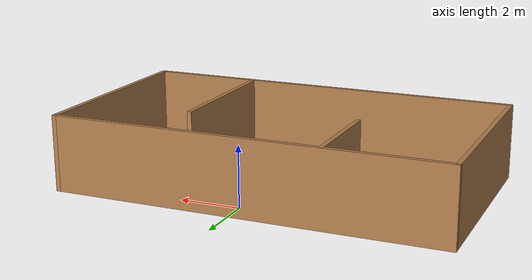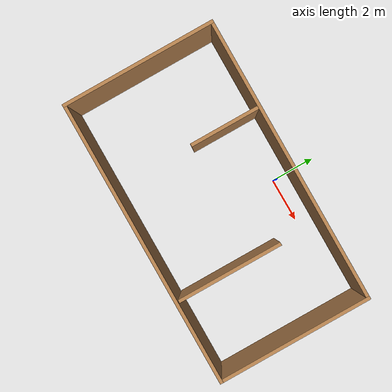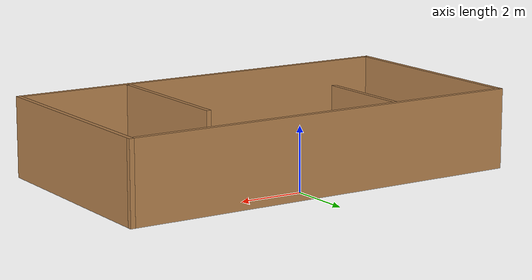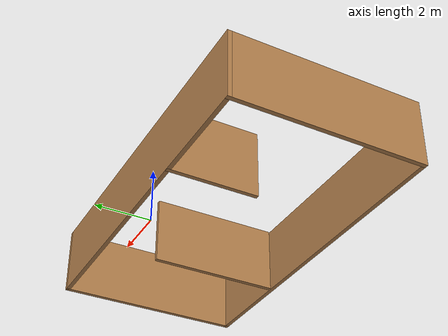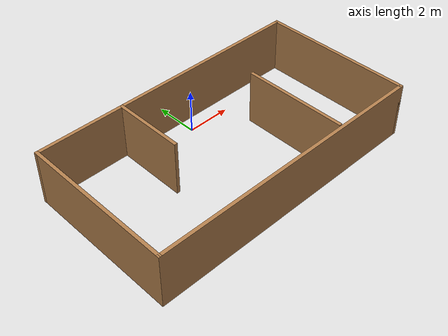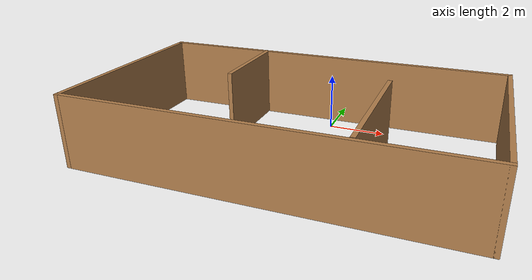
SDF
<?xml version='1.0'?>
<sdf version='1.7'>
  <model name='model'>
    <pose>-0.429899 -2.6824 0 0 -0 0</pose>
    <link name='Wall_2'>
      <collision name='Wall_2_Collision'>
        <geometry>
          <box>
            <size>7 0.15 2.5</size>
          </box>
        </geometry>
        <pose>0 0 1.25 0 -0 0</pose>
      </collision>
      <visual name='Wall_2_Visual'>
        <pose>0 0 1.25 0 -0 0</pose>
        <geometry>
          <box>
            <size>7 0.15 2.5</size>
          </box>
        </geometry>
        <material>
          <script>
            <uri>file://media/materials/scripts/gazebo.material</uri>
            <name>Gazebo/Wood</name>
          </script>
          <ambient>1 1 1 1</ambient>
        </material>
        <meta>
          <layer>0</layer>
        </meta>
      </visual>
      <pose>-6.425 -0 0 0 -0 -1.5708</pose>
    </link>
    <link name='Wall_3'>
      <collision name='Wall_3_Collision'>
        <geometry>
          <box>
            <size>13 0.15 2.5</size>
          </box>
        </geometry>
        <pose>0 0 1.25 0 -0 0</pose>
      </collision>
      <visual name='Wall_3_Visual'>
        <pose>0 0 1.25 0 -0 0</pose>
        <geometry>
          <box>
            <size>13 0.15 2.5</size>
          </box>
        </geometry>
        <material>
          <script>
            <uri>file://media/materials/scripts/gazebo.material</uri>
            <name>Gazebo/Wood</name>
          </script>
          <ambient>1 1 1 1</ambient>
        </material>
        <meta>
          <layer>0</layer>
        </meta>
      </visual>
      <pose>0 -3.425 0 0 -0 0</pose>
    </link>
    <link name='Wall_4'>
      <collision name='Wall_4_Collision'>
        <geometry>
          <box>
            <size>7 0.15 2.5</size>
          </box>
        </geometry>
        <pose>0 0 1.25 0 -0 0</pose>
      </collision>
      <visual name='Wall_4_Visual'>
        <pose>0 0 1.25 0 -0 0</pose>
        <geometry>
          <box>
            <size>7 0.15 2.5</size>
          </box>
        </geometry>
        <material>
          <script>
            <uri>file://media/materials/scripts/gazebo.material</uri>
            <name>Gazebo/Wood</name>
          </script>
          <ambient>1 1 1 1</ambient>
        </material>
        <meta>
          <layer>0</layer>
        </meta>
      </visual>
      <pose>6.425 -0 0 0 -0 1.5708</pose>
    </link>
    <link name='Wall_5'>
      <collision name='Wall_5_Collision'>
        <geometry>
          <box>
            <size>13 0.15 2.5</size>
          </box>
        </geometry>
        <pose>0 0 1.25 0 -0 0</pose>
      </collision>
      <visual name='Wall_5_Visual'>
        <pose>0 0 1.25 0 -0 0</pose>
        <geometry>
          <box>
            <size>13 0.15 2.5</size>
          </box>
        </geometry>
        <material>
          <script>
            <uri>file://media/materials/scripts/gazebo.material</uri>
            <name>Gazebo/Wood</name>
          </script>
          <ambient>1 1 1 1</ambient>
        </material>
        <meta>
          <layer>0</layer>
        </meta>
      </visual>
      <pose>0 3.425 0 0 -0 3.14159</pose>
    </link>
    <link name='Wall_7'>
      <collision name='Wall_7_Collision'>
        <geometry>
          <box>
            <size>3.25 0.15 2.5</size>
          </box>
        </geometry>
        <pose>0 0 1.25 0 -0 0</pose>
      </collision>
      <visual name='Wall_7_Visual'>
        <pose>0 0 1.25 0 -0 0</pose>
        <geometry>
          <box>
            <size>3.25 0.15 2.5</size>
          </box>
        </geometry>
        <material>
          <script>
            <uri>file://media/materials/scripts/gazebo.material</uri>
            <name>Gazebo/Wood</name>
          </script>
          <ambient>1 1 1 1</ambient>
        </material>
        <meta>
          <layer>0</layer>
        </meta>
      </visual>
      <pose>-2.48974 1.85751 0 0 -0 -1.5708</pose>
    </link>
    <link name='Wall_9'>
      <collision name='Wall_9_Collision'>
        <geometry>
          <box>
            <size>4.75 0.15 2.5</size>
          </box>
        </geometry>
        <pose>0 0 1.25 0 -0 0</pose>
      </collision>
      <visual name='Wall_9_Visual'>
        <pose>0 0 1.25 0 -0 0</pose>
        <geometry>
          <box>
            <size>4.75 0.15 2.5</size>
          </box>
        </geometry>
        <material>
          <script>
            <uri>file://media/materials/scripts/gazebo.material</uri>
            <name>Gazebo/Wood</name>
          </script>
          <ambient>1 1 1 1</ambient>
        </material>
        <meta>
          <layer>0</layer>
        </meta>
      </visual>
      <pose>2.75728 -0.938827 0 0 -0 -1.5708</pose>
    </link>
    <static>1</static>
  </model>
</sdf>
